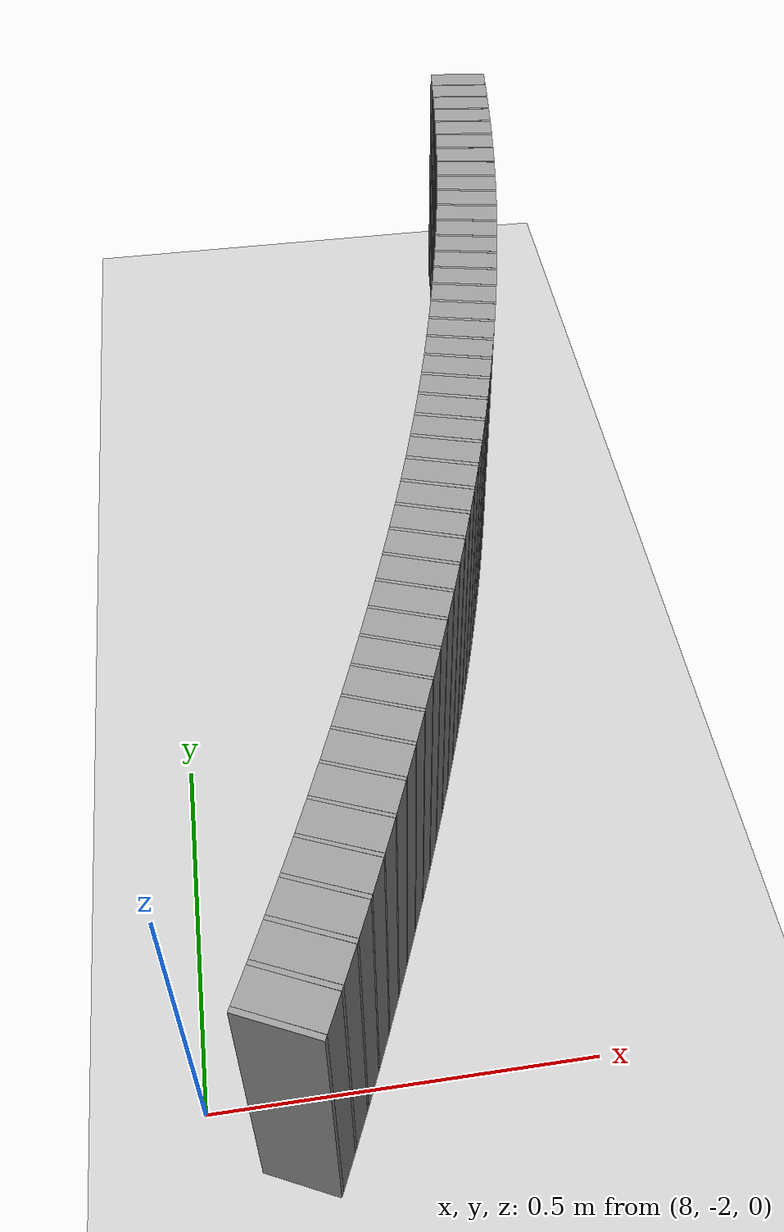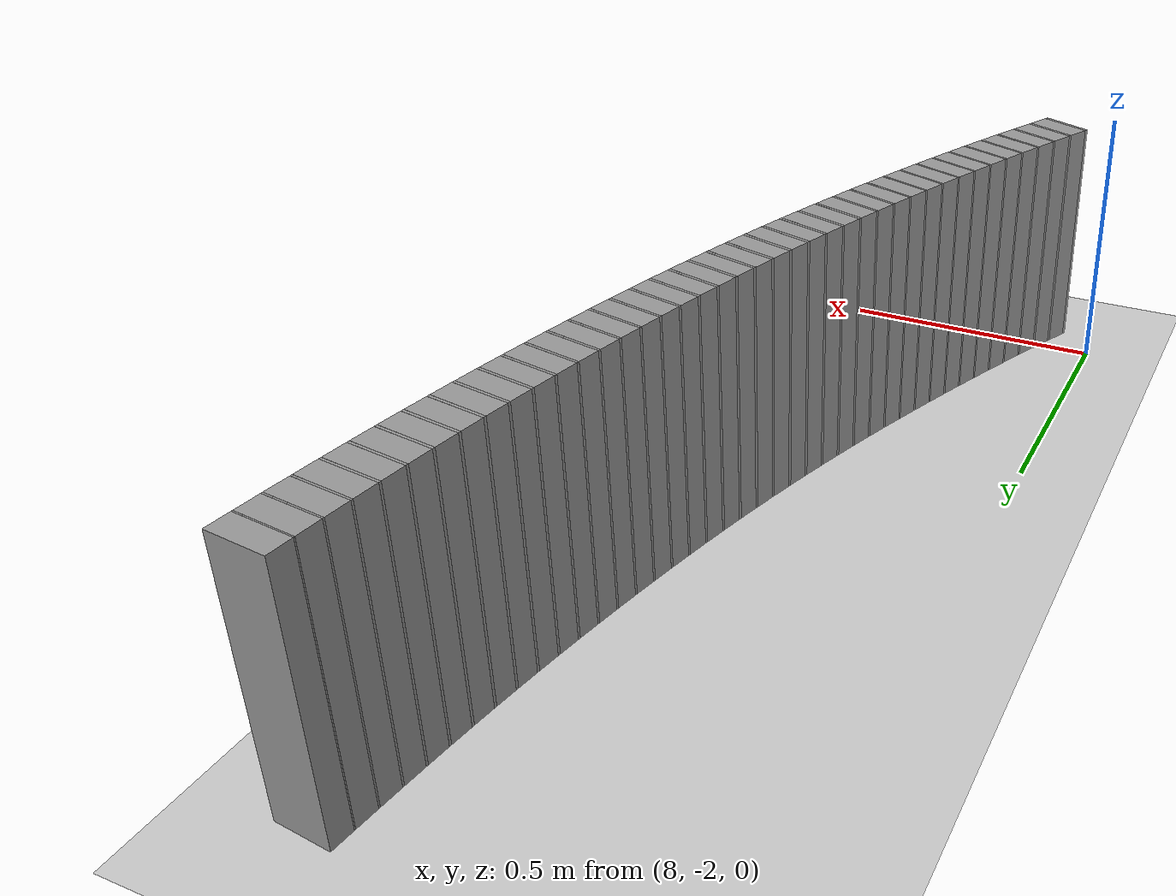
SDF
<sdf version="1.6">
 <world name="default">
  <include><uri>model://ground_plane</uri></include>
  <include><uri>model://sun</uri></include>
  <model name="wall_970_inward">
   <static>true</static>
   <link name="link">
    <collision name="collision">
     <geometry><box><size>0.006729009167083483 0.1 0.45</size></box></geometry>
    </collision>
    <visual name="visual">
     <geometry><box><size>0.006729009167083483 0.1 0.45</size></box></geometry>
     <material>
      <script><uri>file://media/materials/scripts/gazebo.material</uri><name>Gazebo/Gray</name></script>
     </material>
    </visual>
   </link>
   <pose>8.111903718564118 -2.095568244802338 0.225 0 0 1.1370368140136</pose>
  </model>
  <model name="wall_971_inward">
   <static>true</static>
   <link name="link">
    <collision name="collision">
     <geometry><box><size>0.04443290309049253 0.1 0.45</size></box></geometry>
    </collision>
    <visual name="visual">
     <geometry><box><size>0.04443290309049253 0.1 0.45</size></box></geometry>
     <material>
      <script><uri>file://media/materials/scripts/gazebo.material</uri><name>Gazebo/Gray</name></script>
     </material>
    </visual>
   </link>
   <pose>8.122541824965381 -2.0723042456131724 0.225 0 0 1.1426443510406616</pose>
  </model>
  <model name="wall_972_inward">
   <static>true</static>
   <link name="link">
    <collision name="collision">
     <geometry><box><size>0.006232259986639662 0.1 0.45</size></box></geometry>
    </collision>
    <visual name="visual">
     <geometry><box><size>0.006232259986639662 0.1 0.45</size></box></geometry>
     <material>
      <script><uri>file://media/materials/scripts/gazebo.material</uri><name>Gazebo/Gray</name></script>
     </material>
    </visual>
   </link>
   <pose>8.13304492672398 -2.04925163895962 0.225 0 0 1.1478379243774262</pose>
  </model>
  <model name="wall_973_inward">
   <static>true</static>
   <link name="link">
    <collision name="collision">
     <geometry><box><size>0.044300469198851486 0.1 0.45</size></box></geometry>
    </collision>
    <visual name="visual">
     <geometry><box><size>0.044300469198851486 0.1 0.45</size></box></geometry>
     <material>
      <script><uri>file://media/materials/scripts/gazebo.material</uri><name>Gazebo/Gray</name></script>
     </material>
    </visual>
   </link>
   <pose>8.143310733822467 -2.0261648348806087 0.225 0 0 1.1530314977140852</pose>
  </model>
  <model name="wall_974_inward">
   <static>true</static>
   <link name="link">
    <collision name="collision">
     <geometry><box><size>0.0057829448366355654 0.1 0.45</size></box></geometry>
    </collision>
    <visual name="visual">
     <geometry><box><size>0.0057829448366355654 0.1 0.45</size></box></geometry>
     <material>
      <script><uri>file://media/materials/scripts/gazebo.material</uri><name>Gazebo/Gray</name></script>
     </material>
    </visual>
   </link>
   <pose>8.153457868694913 -2.003271140184985 0.225 0 0 1.1578506370646373</pose>
  </model>
  <model name="wall_975_inward">
   <static>true</static>
   <link name="link">
    <collision name="collision">
     <geometry><box><size>0.04409095326926171 0.1 0.45</size></box></geometry>
    </collision>
    <visual name="visual">
     <geometry><box><size>0.04409095326926171 0.1 0.45</size></box></geometry>
     <material>
      <script><uri>file://media/materials/scripts/gazebo.material</uri><name>Gazebo/Gray</name></script>
     </material>
    </visual>
   </link>
   <pose>8.163367882165616 -1.9803879240498348 0.225 0 0 1.1626697764151654</pose>
  </model>
  <model name="wall_976_inward">
   <static>true</static>
   <link name="link">
    <collision name="collision">
     <geometry><box><size>0.005364360197349227 0.1 0.45</size></box></geometry>
    </collision>
    <visual name="visual">
     <geometry><box><size>0.005364360197349227 0.1 0.45</size></box></geometry>
     <material>
      <script><uri>file://media/materials/scripts/gazebo.material</uri><name>Gazebo/Gray</name></script>
     </material>
    </visual>
   </link>
   <pose>8.173171036981625 -1.957686514808566 0.225 0 0 1.1671400914685293</pose>
  </model>
  <model name="wall_977_inward">
   <static>true</static>
   <link name="link">
    <collision name="collision">
     <geometry><box><size>0.043809436206396206 0.1 0.45</size></box></geometry>
    </collision>
    <visual name="visual">
     <geometry><box><size>0.043809436206396206 0.1 0.45</size></box></geometry>
     <material>
      <script><uri>file://media/materials/scripts/gazebo.material</uri><name>Gazebo/Gray</name></script>
     </material>
    </visual>
   </link>
   <pose>8.182738224315756 -1.9350373798225762 0.225 0 0 1.1716104065218713</pose>
  </model>
  <model name="wall_978_inward">
   <static>true</static>
   <link name="link">
    <collision name="collision">
     <geometry><box><size>0.005003674212216144 0.1 0.45</size></box></geometry>
    </collision>
    <visual name="visual">
     <geometry><box><size>0.005003674212216144 0.1 0.45</size></box></geometry>
     <material>
      <script><uri>file://media/materials/scripts/gazebo.material</uri><name>Gazebo/Gray</name></script>
     </material>
    </visual>
   </link>
   <pose>8.192214660738951 -1.9125456894220116 0.225 0 0 1.1757801471151754</pose>
  </model>
  <model name="wall_979_inward">
   <static>true</static>
   <link name="link">
    <collision name="collision">
     <geometry><box><size>0.0434695512368718 0.1 0.45</size></box></geometry>
    </collision>
    <visual name="visual">
     <geometry><box><size>0.0434695512368718 0.1 0.45</size></box></geometry>
     <material>
      <script><uri>file://media/materials/scripts/gazebo.material</uri><name>Gazebo/Gray</name></script>
     </material>
    </visual>
   </link>
   <pose>8.201457748142772 -1.8901408286509667 0.225 0 0 1.1799498877082881</pose>
  </model>
  <model name="wall_980_inward">
   <static>true</static>
   <link name="link">
    <collision name="collision">
     <geometry><box><size>0.004708549815718161 0.1 0.45</size></box></geometry>
    </collision>
    <visual name="visual">
     <geometry><box><size>0.004708549815718161 0.1 0.45</size></box></geometry>
     <material>
      <script><uri>file://media/materials/scripts/gazebo.material</uri><name>Gazebo/Gray</name></script>
     </material>
    </visual>
   </link>
   <pose>8.210626433671015 -1.867864905030953 0.225 0 0 1.1838736892898922</pose>
  </model>
  <model name="wall_981_inward">
   <static>true</static>
   <link name="link">
    <collision name="collision">
     <geometry><box><size>0.04308777760432666 0.1 0.45</size></box></geometry>
    </collision>
    <visual name="visual">
     <geometry><box><size>0.04308777760432666 0.1 0.45</size></box></geometry>
     <material>
      <script><uri>file://media/materials/scripts/gazebo.material</uri><name>Gazebo/Gray</name></script>
     </material>
    </visual>
   </link>
   <pose>8.219565827741569 -1.8457016768937091 0.225 0 0 1.187797490871705</pose>
  </model>
  <model name="wall_982_inward">
   <static>true</static>
   <link name="link">
    <collision name="collision">
     <geometry><box><size>0.004475633977607856 0.1 0.45</size></box></geometry>
    </collision>
    <visual name="visual">
     <geometry><box><size>0.004475633977607856 0.1 0.45</size></box></geometry>
     <material>
      <script><uri>file://media/materials/scripts/gazebo.material</uri><name>Gazebo/Gray</name></script>
     </material>
    </visual>
   </link>
   <pose>8.228445391951073 -1.8236398954804587 0.225 0 0 1.1915271945000838</pose>
  </model>
  <model name="wall_983_inward">
   <static>true</static>
   <link name="link">
    <collision name="collision">
     <geometry><box><size>0.04267885594220961 0.1 0.45</size></box></geometry>
    </collision>
    <visual name="visual">
     <geometry><box><size>0.04267885594220961 0.1 0.45</size></box></geometry>
     <material>
      <script><uri>file://media/materials/scripts/gazebo.material</uri><name>Gazebo/Gray</name></script>
     </material>
    </visual>
   </link>
   <pose>8.237100681261772 -1.8017088265926666 0.225 0 0 1.1952568981286413</pose>
  </model>
  <model name="wall_984_inward">
   <static>true</static>
   <link name="link">
    <collision name="collision">
     <geometry><box><size>0.004313991511766985 0.1 0.45</size></box></geometry>
    </collision>
    <visual name="visual">
     <geometry><box><size>0.004313991511766985 0.1 0.45</size></box></geometry>
     <material>
      <script><uri>file://media/materials/scripts/gazebo.material</uri><name>Gazebo/Gray</name></script>
     </material>
    </visual>
   </link>
   <pose>8.245711349312355 -1.7798470396391584 0.225 0 0 1.1988518987985286</pose>
  </model>
  <model name="wall_985_inward">
   <static>true</static>
   <link name="link">
    <collision name="collision">
     <geometry><box><size>0.042262036649437715 0.1 0.45</size></box></geometry>
    </collision>
    <visual name="visual">
     <geometry><box><size>0.042262036649437715 0.1 0.45</size></box></geometry>
     <material>
      <script><uri>file://media/materials/scripts/gazebo.material</uri><name>Gazebo/Gray</name></script>
     </material>
    </visual>
   </link>
   <pose>8.25410403503253 -1.7581239220647786 0.225 0 0 1.2024468994688549</pose>
  </model>
  <model name="wall_986_inward">
   <static>true</static>
   <link name="link">
    <collision name="collision">
     <geometry><box><size>0.004235615633267237 0.1 0.45</size></box></geometry>
    </collision>
    <visual name="visual">
     <geometry><box><size>0.004235615633267237 0.1 0.45</size></box></geometry>
     <material>
      <script><uri>file://media/materials/scripts/gazebo.material</uri><name>Gazebo/Gray</name></script>
     </material>
    </visual>
   </link>
   <pose>8.262468402369088 -1.7364318793194253 0.225 0 0 1.2059765864926033</pose>
  </model>
  <model name="wall_987_inward">
   <static>true</static>
   <link name="link">
    <collision name="collision">
     <geometry><box><size>0.041850018666857135 0.1 0.45</size></box></geometry>
    </collision>
    <visual name="visual">
     <geometry><box><size>0.041850018666857135 0.1 0.45</size></box></geometry>
     <material>
      <script><uri>file://media/materials/scripts/gazebo.material</uri><name>Gazebo/Gray</name></script>
     </material>
    </visual>
   </link>
   <pose>8.270620595185974 -1.7148793244272698 0.225 0 0 1.209506273516051</pose>
  </model>
  <model name="wall_988_inward">
   <static>true</static>
   <link name="link">
    <collision name="collision">
     <geometry><box><size>0.0042439353547835375 0.1 0.45</size></box></geometry>
    </collision>
    <visual name="visual">
     <geometry><box><size>0.0042439353547835375 0.1 0.45</size></box></geometry>
     <material>
      <script><uri>file://media/materials/scripts/gazebo.material</uri><name>Gazebo/Gray</name></script>
     </material>
    </visual>
   </link>
   <pose>8.278760245716548 -1.693317583235764 0.225 0 0 1.2130428936843785</pose>
  </model>
  <model name="wall_989_inward">
   <static>true</static>
   <link name="link">
    <collision name="collision">
     <geometry><box><size>0.041454378430403595 0.1 0.45</size></box></geometry>
    </collision>
    <visual name="visual">
     <geometry><box><size>0.041454378430403595 0.1 0.45</size></box></geometry>
     <material>
      <script><uri>file://media/materials/scripts/gazebo.material</uri><name>Gazebo/Gray</name></script>
     </material>
    </visual>
   </link>
   <pose>8.286692644813577 -1.6718895533414844 0.225 0 0 1.2165795138523217</pose>
  </model>
  <model name="wall_990_inward">
   <static>true</static>
   <link name="link">
    <collision name="collision">
     <geometry><box><size>0.004336663187670555 0.1 0.45</size></box></geometry>
    </collision>
    <visual name="visual">
     <geometry><box><size>0.004336663187670555 0.1 0.45</size></box></geometry>
     <material>
      <script><uri>file://media/materials/scripts/gazebo.material</uri><name>Gazebo/Gray</name></script>
     </material>
    </visual>
   </link>
   <pose>8.294626736892877 -1.6504127177034407 0.225 0 0 1.220193407708083</pose>
  </model>
  <model name="wall_991_inward">
   <static>true</static>
   <link name="link">
    <collision name="collision">
     <geometry><box><size>0.04108081499847302 0.1 0.45</size></box></geometry>
    </collision>
    <visual name="visual">
     <geometry><box><size>0.04108081499847302 0.1 0.45</size></box></geometry>
     <material>
      <script><uri>file://media/materials/scripts/gazebo.material</uri><name>Gazebo/Gray</name></script>
     </material>
    </visual>
   </link>
   <pose>8.302356612778091 -1.6290600769226113 0.225 0 0 1.22380730156452</pose>
  </model>
  <model name="wall_992_inward">
   <static>true</static>
   <link name="link">
    <collision name="collision">
     <geometry><box><size>0.004484502755509092 0.1 0.45</size></box></geometry>
    </collision>
    <visual name="visual">
     <geometry><box><size>0.004484502755509092 0.1 0.45</size></box></geometry>
     <material>
      <script><uri>file://media/materials/scripts/gazebo.material</uri><name>Gazebo/Gray</name></script>
     </material>
    </visual>
   </link>
   <pose>8.310096376740125 -1.607632408918481 0.225 0 0 1.2275443958929046</pose>
  </model>
  <model name="wall_993_inward">
   <static>true</static>
   <link name="link">
    <collision name="collision">
     <geometry><box><size>0.040733336396260235 0.1 0.45</size></box></geometry>
    </collision>
    <visual name="visual">
     <geometry><box><size>0.040733336396260235 0.1 0.45</size></box></geometry>
     <material>
      <script><uri>file://media/materials/scripts/gazebo.material</uri><name>Gazebo/Gray</name></script>
     </material>
    </visual>
   </link>
   <pose>8.317633713542742 -1.5863168943684811 0.225 0 0 1.2312814902209543</pose>
  </model>
  <model name="wall_994_inward">
   <static>true</static>
   <link name="link">
    <collision name="collision">
     <geometry><box><size>0.00471061105718906 0.1 0.45</size></box></geometry>
    </collision>
    <visual name="visual">
     <geometry><box><size>0.00471061105718906 0.1 0.45</size></box></geometry>
     <material>
      <script><uri>file://media/materials/scripts/gazebo.material</uri><name>Gazebo/Gray</name></script>
     </material>
    </visual>
   </link>
   <pose>8.325192080757077 -1.5648889118247837 0.225 0 0 1.235207009517158</pose>
  </model>
  <model name="wall_995_inward">
   <static>true</static>
   <link name="link">
    <collision name="collision">
     <geometry><box><size>0.04041294311350204 0.1 0.45</size></box></geometry>
    </collision>
    <visual name="visual">
     <geometry><box><size>0.04041294311350204 0.1 0.45</size></box></geometry>
     <material>
      <script><uri>file://media/materials/scripts/gazebo.material</uri><name>Gazebo/Gray</name></script>
     </material>
    </visual>
   </link>
   <pose>8.332547305945283 -1.5435597366345513 0.225 0 0 1.2391325288132604</pose>
  </model>
  <model name="wall_996_inward">
   <static>true</static>
   <link name="link">
    <collision name="collision">
     <geometry><box><size>0.00495613349449834 0.1 0.45</size></box></geometry>
    </collision>
    <visual name="visual">
     <geometry><box><size>0.00495613349449834 0.1 0.45</size></box></geometry>
     <material>
      <script><uri>file://media/materials/scripts/gazebo.material</uri><name>Gazebo/Gray</name></script>
     </material>
    </visual>
   </link>
   <pose>8.33992408443505 -1.5221081501421958 0.225 0 0 1.243262651800705</pose>
  </model>
  <model name="wall_997_inward">
   <static>true</static>
   <link name="link">
    <collision name="collision">
     <geometry><box><size>0.040116886311218736 0.1 0.45</size></box></geometry>
    </collision>
    <visual name="visual">
     <geometry><box><size>0.040116886311218736 0.1 0.45</size></box></geometry>
     <material>
      <script><uri>file://media/materials/scripts/gazebo.material</uri><name>Gazebo/Gray</name></script>
     </material>
    </visual>
   </link>
   <pose>8.347095783370083 -1.5007432217523184 0.225 0 0 1.2473927747878768</pose>
  </model>
  <model name="wall_998_inward">
   <static>true</static>
   <link name="link">
    <collision name="collision">
     <geometry><box><size>0.005220553768588516 0.1 0.45</size></box></geometry>
    </collision>
    <visual name="visual">
     <geometry><box><size>0.005220553768588516 0.1 0.45</size></box></geometry>
     <material>
      <script><uri>file://media/materials/scripts/gazebo.material</uri><name>Gazebo/Gray</name></script>
     </material>
    </visual>
   </link>
   <pose>8.354289025630827 -1.479246079080212 0.225 0 0 1.2517432499848686</pose>
  </model>
  <model name="wall_999_inward">
   <static>true</static>
   <link name="link">
    <collision name="collision">
     <geometry><box><size>0.0398430717093224 0.1 0.45</size></box></geometry>
    </collision>
    <visual name="visual">
     <geometry><box><size>0.0398430717093224 0.1 0.45</size></box></geometry>
     <material>
      <script><uri>file://media/materials/scripts/gazebo.material</uri><name>Gazebo/Gray</name></script>
     </material>
    </visual>
   </link>
   <pose>8.361274171377321 -1.457824376533345 0.225 0 0 1.256093725182095</pose>
  </model>
  <model name="wall_1000_inward">
   <static>true</static>
   <link name="link">
    <collision name="collision">
     <geometry><box><size>0.005467589136132899 0.1 0.45</size></box></geometry>
    </collision>
    <visual name="visual">
     <geometry><box><size>0.005467589136132899 0.1 0.45</size></box></geometry>
     <material>
      <script><uri>file://media/materials/scripts/gazebo.material</uri><name>Gazebo/Gray</name></script>
     </material>
    </visual>
   </link>
   <pose>8.36827490634916 -1.436277855334139 0.225 0 0 1.2606500652271917</pose>
  </model>
  <model name="wall_1001_inward">
   <static>true</static>
   <link name="link">
    <collision name="collision">
     <geometry><box><size>0.039590360676901484 0.1 0.45</size></box></geometry>
    </collision>
    <visual name="visual">
     <geometry><box><size>0.039590360676901484 0.1 0.45</size></box></geometry>
     <material>
      <script><uri>file://media/materials/scripts/gazebo.material</uri><name>Gazebo/Gray</name></script>
     </material>
    </visual>
   </link>
   <pose>8.375064749941838 -1.4147964305474203 0.225 0 0 1.2652064052725127</pose>
  </model>
  <model name="wall_1002_inward">
   <static>true</static>
   <link name="link">
    <collision name="collision">
     <geometry><box><size>0.005682416762676085 0.1 0.45</size></box></geometry>
    </collision>
    <visual name="visual">
     <geometry><box><size>0.005682416762676085 0.1 0.45</size></box></geometry>
     <material>
      <script><uri>file://media/materials/scripts/gazebo.material</uri><name>Gazebo/Gray</name></script>
     </material>
    </visual>
   </link>
   <pose>8.381862198822994 -1.3932047765620053 0.225 0 0 1.2699417702721914</pose>
  </model>
  <model name="wall_1003_inward">
   <static>true</static>
   <link name="link">
    <collision name="collision">
     <geometry><box><size>0.03935837972286453 0.1 0.45</size></box></geometry>
    </collision>
    <visual name="visual">
     <geometry><box><size>0.03935837972286453 0.1 0.45</size></box></geometry>
     <material>
      <script><uri>file://media/materials/scripts/gazebo.material</uri><name>Gazebo/Gray</name></script>
     </material>
    </visual>
   </link>
   <pose>8.388446747017667 -1.3716685092828498 0.225 0 0 1.274677135271706</pose>
  </model>
  <model name="wall_1004_inward">
   <static>true</static>
   <link name="link">
    <collision name="collision">
     <geometry><box><size>0.005828334285679522 0.1 0.45</size></box></geometry>
    </collision>
    <visual name="visual">
     <geometry><box><size>0.005828334285679522 0.1 0.45</size></box></geometry>
     <material>
      <script><uri>file://media/materials/scripts/gazebo.material</uri><name>Gazebo/Gray</name></script>
     </material>
    </visual>
   </link>
   <pose>8.39502617816163 -1.350054404774654 0.225 0 0 1.2795340996057947</pose>
  </model>
  <model name="wall_1005_inward">
   <static>true</static>
   <link name="link">
    <collision name="collision">
     <geometry><box><size>0.03914938210505432 0.1 0.45</size></box></geometry>
    </collision>
    <visual name="visual">
     <geometry><box><size>0.03914938210505432 0.1 0.45</size></box></geometry>
     <material>
      <script><uri>file://media/materials/scripts/gazebo.material</uri><name>Gazebo/Gray</name></script>
     </material>
    </visual>
   </link>
   <pose>8.401392977602505 -1.3284856481544478 0.225 0 0 1.284391063939869</pose>
  </model>
  <model name="wall_1006_inward">
   <static>true</static>
   <link name="link">
    <collision name="collision">
     <geometry><box><size>0.0058926712340377305 0.1 0.45</size></box></geometry>
    </collision>
    <visual name="visual">
     <geometry><box><size>0.0058926712340377305 0.1 0.45</size></box></geometry>
     <material>
      <script><uri>file://media/materials/scripts/gazebo.material</uri><name>Gazebo/Gray</name></script>
     </material>
    </visual>
   </link>
   <pose>8.407741408295173 -1.3068779486178368 0.225 0 0 1.289301643037099</pose>
  </model>
  <model name="wall_1007_inward">
   <static>true</static>
   <link name="link">
    <collision name="collision">
     <geometry><box><size>0.038968449787205095 0.1 0.45</size></box></geometry>
    </collision>
    <visual name="visual">
     <geometry><box><size>0.038968449787205095 0.1 0.45</size></box></geometry>
     <material>
      <script><uri>file://media/materials/scripts/gazebo.material</uri><name>Gazebo/Gray</name></script>
     </material>
    </visual>
   </link>
   <pose>8.413880456449984 -1.2853038727795867 0.225 0 0 1.2942122221341246</pose>
  </model>
  <model name="wall_1008_inward">
   <static>true</static>
   <link name="link">
    <collision name="collision">
     <geometry><box><size>0.005879918014086558 0.1 0.45</size></box></geometry>
    </collision>
    <visual name="visual">
     <geometry><box><size>0.005879918014086558 0.1 0.45</size></box></geometry>
     <material>
      <script><uri>file://media/materials/scripts/gazebo.material</uri><name>Gazebo/Gray</name></script>
     </material>
    </visual>
   </link>
   <pose>8.419989987025797 -1.2637280463893243 0.225 0 0 1.299112173419968</pose>
  </model>
  <model name="wall_1009_inward">
   <static>true</static>
   <link name="link">
    <collision name="collision">
     <geometry><box><size>0.03882099422687169 0.1 0.45</size></box></geometry>
    </collision>
    <visual name="visual">
     <geometry><box><size>0.03882099422687169 0.1 0.45</size></box></geometry>
     <material>
      <script><uri>file://media/materials/scripts/gazebo.material</uri><name>Gazebo/Gray</name></script>
     </material>
    </visual>
   </link>
   <pose>8.425896141668524 -1.2421720992748182 0.225 0 0 1.3040121247060517</pose>
  </model>
  <model name="wall_1010_inward">
   <static>true</static>
   <link name="link">
    <collision name="collision">
     <geometry><box><size>0.005774599423432075 0.1 0.45</size></box></geometry>
    </collision>
    <visual name="visual">
     <geometry><box><size>0.005774599423432075 0.1 0.45</size></box></geometry>
     <material>
      <script><uri>file://media/materials/scripts/gazebo.material</uri><name>Gazebo/Gray</name></script>
     </material>
    </visual>
   </link>
   <pose>8.431761115569326 -1.2206594860773197 0.225 0 0 1.3088243094652103</pose>
  </model>
  <model name="wall_1011_inward">
   <static>true</static>
   <link name="link">
    <collision name="collision">
     <geometry><box><size>0.038713179592260095 0.1 0.45</size></box></geometry>
    </collision>
    <visual name="visual">
     <geometry><box><size>0.038713179592260095 0.1 0.45</size></box></geometry>
     <material>
      <script><uri>file://media/materials/scripts/gazebo.material</uri><name>Gazebo/Gray</name></script>
     </material>
    </visual>
   </link>
   <pose>8.437431939737783 -1.1991506255896371 0.225 0 0 1.3136364942238448</pose>
  </model>
  <model name="wall_1012_inward">
   <static>true</static>
   <link name="link">
    <collision name="collision">
     <geometry><box><size>0.005609451702048823 0.1 0.45</size></box></geometry>
    </collision>
    <visual name="visual">
     <geometry><box><size>0.005609451702048823 0.1 0.45</size></box></geometry>
     <material>
      <script><uri>file://media/materials/scripts/gazebo.material</uri><name>Gazebo/Gray</name></script>
     </material>
    </visual>
   </link>
   <pose>8.44305564625553 -1.1777147526216378 0.225 0 0 1.3183110543331322</pose>
  </model>
  <model name="wall_1013_inward">
   <static>true</static>
   <link name="link">
    <collision name="collision">
     <geometry><box><size>0.03865069569711112 0.1 0.45</size></box></geometry>
    </collision>
    <visual name="visual">
     <geometry><box><size>0.03865069569711112 0.1 0.45</size></box></geometry>
     <material>
      <script><uri>file://media/materials/scripts/gazebo.material</uri><name>Gazebo/Gray</name></script>
     </material>
    </visual>
   </link>
   <pose>8.448496460875024 -1.1562639597732367 0.225 0 0 1.3229856144426249</pose>
  </model>
  <model name="wall_1014_inward">
   <static>true</static>
   <link name="link">
    <collision name="collision">
     <geometry><box><size>0.005384621818922009 0.1 0.45</size></box></geometry>
    </collision>
    <visual name="visual">
     <geometry><box><size>0.005384621818922009 0.1 0.45</size></box></geometry>
     <material>
      <script><uri>file://media/materials/scripts/gazebo.material</uri><name>Gazebo/Gray</name></script>
     </material>
    </visual>
   </link>
   <pose>8.453885280839483 -1.1349159652782528 0.225 0 0 1.327472814350069</pose>
  </model>
  <model name="wall_1015_inward">
   <static>true</static>
   <link name="link">
    <collision name="collision">
     <geometry><box><size>0.03863621253700878 0.1 0.45</size></box></geometry>
    </collision>
    <visual name="visual">
     <geometry><box><size>0.03863621253700878 0.1 0.45</size></box></geometry>
     <material>
      <script><uri>file://media/materials/scripts/gazebo.material</uri><name>Gazebo/Gray</name></script>
     </material>
    </visual>
   </link>
   <pose>8.4591040637109 -1.1135332217109646 0.225 0 0 1.3319600142573336</pose>
  </model>
  <model name="wall_1016_inward">
   <static>true</static>
   <link name="link">
    <collision name="collision">
     <geometry><box><size>0.005137129624358179 0.1 0.45</size></box></geometry>
    </collision>
    <visual name="visual">
     <geometry><box><size>0.005137129624358179 0.1 0.45</size></box></geometry>
     <material>
      <script><uri>file://media/materials/scripts/gazebo.material</uri><name>Gazebo/Gray</name></script>
     </material>
    </visual>
   </link>
   <pose>8.464271150835275 -1.092265248787256 0.225 0 0 1.3362409686865822</pose>
  </model>
  <model name="wall_1017_inward">
   <static>true</static>
   <link name="link">
    <collision name="collision">
     <geometry><box><size>0.03867172683501582 0.1 0.45</size></box></geometry>
    </collision>
    <visual name="visual">
     <geometry><box><size>0.03867172683501582 0.1 0.45</size></box></geometry>
     <material>
      <script><uri>file://media/materials/scripts/gazebo.material</uri><name>Gazebo/Gray</name></script>
     </material>
    </visual>
   </link>
   <pose>8.469281420576838 -1.070941546880906 0.225 0 0 1.340521923116334</pose>
  </model>
  <model name="wall_1018_inward">
   <static>true</static>
   <link name="link">
    <collision name="collision">
     <geometry><box><size>0.004906080185503133 0.1 0.45</size></box></geometry>
    </collision>
    <visual name="visual">
     <geometry><box><size>0.004906080185503133 0.1 0.45</size></box></geometry>
     <material>
      <script><uri>file://media/materials/scripts/gazebo.material</uri><name>Gazebo/Gray</name></script>
     </material>
    </visual>
   </link>
   <pose>8.474244853199302 -1.0497255185071133 0.225 0 0 1.3446103346604352</pose>
  </model>
  <model name="wall_1019_inward">
   <static>true</static>
   <link name="link">
    <collision name="collision">
     <geometry><box><size>0.03875336573390909 0.1 0.45</size></box></geometry>
    </collision>
    <visual name="visual">
     <geometry><box><size>0.03875336573390909 0.1 0.45</size></box></geometry>
     <material>
      <script><uri>file://media/materials/scripts/gazebo.material</uri><name>Gazebo/Gray</name></script>
     </material>
    </visual>
   </link>
   <pose>8.479063199013208 -1.0284342162074092 0.225 0 0 1.3486987462048776</pose>
  </model>
  <model name="wall_1020_inward">
   <static>true</static>
   <link name="link">
    <collision name="collision">
     <geometry><box><size>0.004702836921988961 0.1 0.45</size></box></geometry>
    </collision>
    <visual name="visual">
     <geometry><box><size>0.004702836921988961 0.1 0.45</size></box></geometry>
     <material>
      <script><uri>file://media/materials/scripts/gazebo.material</uri><name>Gazebo/Gray</name></script>
     </material>
    </visual>
   </link>
   <pose>8.483840388938265 -1.0072377980206846 0.225 0 0 1.3526177870055038</pose>
  </model>
  <model name="wall_1021_inward">
   <static>true</static>
   <link name="link">
    <collision name="collision">
     <geometry><box><size>0.03887501813459759 0.1 0.45</size></box></geometry>
    </collision>
    <visual name="visual">
     <geometry><box><size>0.03887501813459759 0.1 0.45</size></box></geometry>
     <material>
      <script><uri>file://media/materials/scripts/gazebo.material</uri><name>Gazebo/Gray</name></script>
     </material>
    </visual>
   </link>
   <pose>8.488482236801651 -0.9859490707393599 0.225 0 0 1.3565368278055376</pose>
  </model>
  <model name="wall_1022_inward">
   <static>true</static>
   <link name="link">
    <collision name="collision">
     <geometry><box><size>0.004570447707255762 0.1 0.45</size></box></geometry>
    </collision>
    <visual name="visual">
     <geometry><box><size>0.004570447707255762 0.1 0.45</size></box></geometry>
     <material>
      <script><uri>file://media/materials/scripts/gazebo.material</uri><name>Gazebo/Gray</name></script>
     </material>
    </visual>
   </link>
   <pose>8.493092501129945 -0.9647212130042726 0.225 0 0 1.3603455434363176</pose>
  </model>
  <model name="wall_1023_inward">
   <static>true</static>
   <link name="link">
    <collision name="collision">
     <geometry><box><size>0.03902867274158103 0.1 0.45</size></box></geometry>
    </collision>
    <visual name="visual">
     <geometry><box><size>0.03902867274158103 0.1 0.45</size></box></geometry>
     <material>
      <script><uri>file://media/materials/scripts/gazebo.material</uri><name>Gazebo/Gray</name></script>
     </material>
    </visual>
   </link>
   <pose>8.497573731684506 -0.9433872318523169 0.225 0 0 1.3641542590677598</pose>
  </model>
  <model name="wall_1024_inward">
   <static>true</static>
   <link name="link">
    <collision name="collision">
     <geometry><box><size>0.004513936456394103 0.1 0.45</size></box></geometry>
    </collision>
    <visual name="visual">
     <geometry><box><size>0.004513936456394103 0.1 0.45</size></box></geometry>
     <material>
      <script><uri>file://media/materials/scripts/gazebo.material</uri><name>Gazebo/Gray</name></script>
     </material>
    </visual>
   </link>
   <pose>8.502032337225323 -0.9220773769168457 0.225 0 0 1.3679158816525612</pose>
  </model>
  <model name="wall_1025_inward">
   <static>true</static>
   <link name="link">
    <collision name="collision">
     <geometry><box><size>0.0392007953330033 0.1 0.45</size></box></geometry>
    </collision>
    <visual name="visual">
     <geometry><box><size>0.0392007953330033 0.1 0.45</size></box></geometry>
     <material>
      <script><uri>file://media/materials/scripts/gazebo.material</uri><name>Gazebo/Gray</name></script>
     </material>
    </visual>
   </link>
   <pose>8.506364166436937 -0.9006535800174799 0.225 0 0 1.3716775042371456</pose>
  </model>
  <model name="wall_1026_inward">
   <static>true</static>
   <link name="link">
    <collision name="collision">
     <geometry><box><size>0.004515413311452266 0.1 0.45</size></box></geometry>
    </collision>
    <visual name="visual">
     <geometry><box><size>0.004515413311452266 0.1 0.45</size></box></geometry>
     <material>
      <script><uri>file://media/materials/scripts/gazebo.material</uri><name>Gazebo/Gray</name></script>
     </material>
    </visual>
   </link>
   <pose>8.510679492076003 -0.8792256995197558 0.225 0 0 1.3754403575430525</pose>
  </model>
  <model name="wall_1027_inward">
   <static>true</static>
   <link name="link">
    <collision name="collision">
     <geometry><box><size>0.0393809867351388 0.1 0.45</size></box></geometry>
    </collision>
    <visual name="visual">
     <geometry><box><size>0.0393809867351388 0.1 0.45</size></box></geometry>
     <material>
      <script><uri>file://media/materials/scripts/gazebo.material</uri><name>Gazebo/Gray</name></script>
     </material>
    </visual>
   </link>
   <pose>8.514867273298893 -0.8576807385486558 0.225 0 0 1.3792032108490482</pose>
  </model>
  <model name="wall_1028_inward">
   <static>true</static>
   <link name="link">
    <collision name="collision">
     <geometry><box><size>0.0045907410317733485 0.1 0.45</size></box></geometry>
    </collision>
    <visual name="visual">
     <geometry><box><size>0.0045907410317733485 0.1 0.45</size></box></geometry>
     <material>
      <script><uri>file://media/materials/scripts/gazebo.material</uri><name>Gazebo/Gray</name></script>
     </material>
    </visual>
   </link>
   <pose>8.51904526595278 -0.8360955138194583 0.225 0 0 1.3830288377074211</pose>
  </model>
  <model name="wall_1029_inward">
   <static>true</static>
   <link name="link">
    <collision name="collision">
     <geometry><box><size>0.039555382343201086 0.1 0.45</size></box></geometry>
    </collision>
    <visual name="visual">
     <geometry><box><size>0.039555382343201086 0.1 0.45</size></box></geometry>
     <material>
      <script><uri>file://media/materials/scripts/gazebo.material</uri><name>Gazebo/Gray</name></script>
     </material>
    </visual>
   </link>
   <pose>8.523091199073653 -0.8143964398061334 0.225 0 0 1.3868544645652103</pose>
  </model>
  <model name="wall_1030_inward">
   <static>true</static>
   <link name="link">
    <collision name="collision">
     <geometry><box><size>0.004702174738328425 0.1 0.45</size></box></geometry>
    </collision>
    <visual name="visual">
     <geometry><box><size>0.004702174738328425 0.1 0.45</size></box></geometry>
     <material>
      <script><uri>file://media/materials/scripts/gazebo.material</uri><name>Gazebo/Gray</name></script>
     </material>
    </visual>
   </link>
   <pose>8.527129632586377 -0.7926392988979694 0.225 0 0 1.3907729535414795</pose>
  </model>
  <model name="wall_1031_inward">
   <static>true</static>
   <link name="link">
    <collision name="collision">
     <geometry><box><size>0.039714274988125894 0.1 0.45</size></box></geometry>
    </collision>
    <visual name="visual">
     <geometry><box><size>0.039714274988125894 0.1 0.45</size></box></geometry>
     <material>
      <script><uri>file://media/materials/scripts/gazebo.material</uri><name>Gazebo/Gray</name></script>
     </material>
    </visual>
   </link>
   <pose>8.531029492673866 -0.7707761878193997 0.225 0 0 1.3946914425179613</pose>
  </model>
  <model name="wall_1032_inward">
   <static>true</static>
   <link name="link">
    <collision name="collision">
     <geometry><box><size>0.004815862170587328 0.1 0.45</size></box></geometry>
    </collision>
    <visual name="visual">
     <geometry><box><size>0.004815862170587328 0.1 0.45</size></box></geometry>
     <material>
      <script><uri>file://media/materials/scripts/gazebo.material</uri><name>Gazebo/Gray</name></script>
     </material>
    </visual>
   </link>
   <pose>8.534920727028545 -0.7488538064720469 0.225 0 0 1.3987046717661393</pose>
  </model>
  <model name="wall_1033_inward">
   <static>true</static>
   <link name="link">
    <collision name="collision">
     <geometry><box><size>0.039847389683748596 0.1 0.45</size></box></geometry>
    </collision>
    <visual name="visual">
     <geometry><box><size>0.039847389683748596 0.1 0.45</size></box></geometry>
     <material>
      <script><uri>file://media/materials/scripts/gazebo.material</uri><name>Gazebo/Gray</name></script>
     </material>
    </visual>
   </link>
   <pose>8.538666067851459 -0.7268385125610334 0.225 0 0 1.4027179010146469</pose>
  </model>
  <model name="wall_1034_inward">
   <static>true</static>
   <link name="link">
    <collision name="collision">
     <geometry><box><size>0.004921797327488602 0.1 0.45</size></box></geometry>
    </collision>
    <visual name="visual">
     <geometry><box><size>0.004921797327488602 0.1 0.45</size></box></geometry>
     <material>
      <script><uri>file://media/materials/scripts/gazebo.material</uri><name>Gazebo/Gray</name></script>
     </material>
    </visual>
   </link>
   <pose>8.54240079079429 -0.7047676936784285 0.225 0 0 1.4068194102869347</pose>
  </model>
  <model name="wall_1035_inward">
   <static>true</static>
   <link name="link">
    <collision name="collision">
     <geometry><box><size>0.039950802327903955 0.1 0.45</size></box></geometry>
    </collision>
    <visual name="visual">
     <geometry><box><size>0.039950802327903955 0.1 0.45</size></box></geometry>
     <material>
      <script><uri>file://media/materials/scripts/gazebo.material</uri><name>Gazebo/Gray</name></script>
     </material>
    </visual>
   </link>
   <pose>8.545982503478113 -0.682619148415478 0.225 0 0 1.4109209195594665</pose>
  </model>
  <model name="wall_1036_inward">
   <static>true</static>
   <link name="link">
    <collision name="collision">
     <geometry><box><size>0.0049596384378683 0.1 0.45</size></box></geometry>
    </collision>
    <visual name="visual">
     <geometry><box><size>0.0049596384378683 0.1 0.45</size></box></geometry>
     <material>
      <script><uri>file://media/materials/scripts/gazebo.material</uri><name>Gazebo/Gray</name></script>
     </material>
    </visual>
   </link>
   <pose>8.549547145030225 -0.6604486859285521 0.225 0 0 1.4150539633579087</pose>
  </model>
  <model name="wall_1037_inward">
   <static>true</static>
   <link name="link">
    <collision name="collision">
     <geometry><box><size>0.04001988478322116 0.1 0.45</size></box></geometry>
    </collision>
    <visual name="visual">
     <geometry><box><size>0.04001988478322116 0.1 0.45</size></box></geometry>
     <material>
      <script><uri>file://media/materials/scripts/gazebo.material</uri><name>Gazebo/Gray</name></script>
     </material>
    </visual>
   </link>
   <pose>8.552953883850055 -0.6382184664000661 0.225 0 0 1.419187007156182</pose>
  </model>
  <model name="wall_1038_inward">
   <static>true</static>
   <link name="link">
    <collision name="collision">
     <geometry><box><size>0.004911748381807525 0.1 0.45</size></box></geometry>
    </collision>
    <visual name="visual">
     <geometry><box><size>0.004911748381807525 0.1 0.45</size></box></geometry>
     <material>
      <script><uri>file://media/materials/scripts/gazebo.material</uri><name>Gazebo/Gray</name></script>
     </material>
    </visual>
   </link>
   <pose>8.556336937865373 -0.6160088505335456 0.225 0 0 1.4232801422366905</pose>
  </model>
  <model name="wall_1039_inward">
   <static>true</static>
   <link name="link">
    <collision name="collision">
     <geometry><box><size>0.040057173997806936 0.1 0.45</size></box></geometry>
    </collision>
    <visual name="visual">
     <geometry><box><size>0.040057173997806936 0.1 0.45</size></box></geometry>
     <material>
      <script><uri>file://media/materials/scripts/gazebo.material</uri><name>Gazebo/Gray</name></script>
     </material>
    </visual>
   </link>
   <pose>8.559560629519112 -0.5937567049506987 0.225 0 0 1.4273732773176357</pose>
  </model>
  <model name="wall_1040_inward">
   <static>true</static>
   <link name="link">
    <collision name="collision">
     <geometry><box><size>0.004764844079702401 0.1 0.45</size></box></geometry>
    </collision>
    <visual name="visual">
     <geometry><box><size>0.004764844079702401 0.1 0.45</size></box></geometry>
     <material>
      <script><uri>file://media/materials/scripts/gazebo.material</uri><name>Gazebo/Gray</name></script>
     </material>
    </visual>
   </link>
   <pose>8.562754511028817 -0.5715744666796879 0.225 0 0 1.4313439911517487</pose>
  </model>
  <model name="wall_1041_inward">
   <static>true</static>
   <link name="link">
    <collision name="collision">
     <geometry><box><size>0.040064967212706575 0.1 0.45</size></box></geometry>
    </collision>
    <visual name="visual">
     <geometry><box><size>0.040064967212706575 0.1 0.45</size></box></geometry>
     <material>
      <script><uri>file://media/materials/scripts/gazebo.material</uri><name>Gazebo/Gray</name></script>
     </material>
    </visual>
   </link>
   <pose>8.56579140775115 -0.5493662587160867 0.225 0 0 1.4353147049852788</pose>
  </model>
  <model name="wall_1042_inward">
   <static>true</static>
   <link name="link">
    <collision name="collision">
     <geometry><box><size>0.004472057387475948 0.1 0.45</size></box></geometry>
    </collision>
    <visual name="visual">
     <geometry><box><size>0.004472057387475948 0.1 0.45</size></box></geometry>
     <material>
      <script><uri>file://media/materials/scripts/gazebo.material</uri><name>Gazebo/Gray</name></script>
     </material>
    </visual>
   </link>
   <pose>8.568790902040135 -0.5273006961363229 0.225 0 0 1.439041428101203</pose>
  </model>
  <model name="wall_1043_inward">
   <static>true</static>
   <link name="link">
    <collision name="collision">
     <geometry><box><size>0.04004874641545363 0.1 0.45</size></box></geometry>
    </collision>
    <visual name="visual">
     <geometry><box><size>0.04004874641545363 0.1 0.45</size></box></geometry>
     <material>
      <script><uri>file://media/materials/scripts/gazebo.material</uri><name>Gazebo/Gray</name></script>
     </material>
    </visual>
   </link>
   <pose>8.571641344204947 -0.5052235620283035 0.225 0 0 1.4427681512172366</pose>
  </model>
  <model name="wall_1044_inward">
   <static>true</static>
   <link name="link">
    <collision name="collision">
     <geometry><box><size>0.004065365589955476 0.1 0.45</size></box></geometry>
    </collision>
    <visual name="visual">
     <geometry><box><size>0.004065365589955476 0.1 0.45</size></box></geometry>
     <material>
      <script><uri>file://media/materials/scripts/gazebo.material</uri><name>Gazebo/Gray</name></script>
     </material>
    </visual>
   </link>
   <pose>8.574450729110673 -0.4833461625302601 0.225 0 0 1.4461559623562648</pose>
  </model>
  <model name="wall_1045_inward">
   <static>true</static>
   <link name="link">
    <collision name="collision">
     <geometry><box><size>0.040016320877640385 0.1 0.45</size></box></geometry>
    </collision>
    <visual name="visual">
     <geometry><box><size>0.040016320877640385 0.1 0.45</size></box></geometry>
     <material>
      <script><uri>file://media/materials/scripts/gazebo.material</uri><name>Gazebo/Gray</name></script>
     </material>
    </visual>
   </link>
   <pose>8.577123528185545 -0.4614679896454067 0.225 0 0 1.4495437734947345</pose>
  </model>
  <model name="wall_1046_inward">
   <static>true</static>
   <link name="link">
    <collision name="collision">
     <geometry><box><size>0.003539370911715339 0.1 0.45</size></box></geometry>
    </collision>
    <visual name="visual">
     <geometry><box><size>0.003539370911715339 0.1 0.45</size></box></geometry>
     <material>
      <script><uri>file://media/materials/scripts/gazebo.material</uri><name>Gazebo/Gray</name></script>
     </material>
    </visual>
   </link>
   <pose>8.579752499630416 -0.4398494149254166 0.225 0 0 1.4524932535310122</pose>
  </model>
  <model name="wall_1047_inward">
   <static>true</static>
   <link name="link">
    <collision name="collision">
     <geometry><box><size>0.03997556493912772 0.1 0.45</size></box></geometry>
    </collision>
    <visual name="visual">
     <geometry><box><size>0.03997556493912772 0.1 0.45</size></box></geometry>
     <material>
      <script><uri>file://media/materials/scripts/gazebo.material</uri><name>Gazebo/Gray</name></script>
     </material>
    </visual>
   </link>
   <pose>8.582261923413299 -0.41823715231626846 0.225 0 0 1.4554427335672346</pose>
  </model>
  <model name="wall_1048_inward">
   <static>true</static>
   <link name="link">
    <collision name="collision">
     <geometry><box><size>0.0029213777253905837 0.1 0.45</size></box></geometry>
    </collision>
    <visual name="visual">
     <geometry><box><size>0.0029213777253905837 0.1 0.45</size></box></geometry>
     <material>
      <script><uri>file://media/materials/scripts/gazebo.material</uri><name>Gazebo/Gray</name></script>
     </material>
    </visual>
   </link>
   <pose>8.584727065370448 -0.39693081934726426 0.225 0 0 1.457877217409492</pose>
  </model>
  <model name="wall_1049_inward">
   <static>true</static>
   <link name="link">
    <collision name="collision">
     <geometry><box><size>0.039936714012376015 0.1 0.45</size></box></geometry>
    </collision>
    <visual name="visual">
     <geometry><box><size>0.039936714012376015 0.1 0.45</size></box></geometry>
     <material>
      <script><uri>file://media/materials/scripts/gazebo.material</uri><name>Gazebo/Gray</name></script>
     </material>
    </visual>
   </link>
   <pose>8.58709336549534 -0.3756328274770896 0.225 0 0 1.4603117012523563</pose>
  </model>
  <model name="wall_1050_inward">
   <static>true</static>
   <link name="link">
    <collision name="collision">
     <geometry><box><size>0.00224664184059481 0.1 0.45</size></box></geometry>
    </collision>
    <visual name="visual">
     <geometry><box><size>0.00224664184059481 0.1 0.45</size></box></geometry>
     <material>
      <script><uri>file://media/materials/scripts/gazebo.material</uri><name>Gazebo/Gray</name></script>
     </material>
    </visual>
   </link>
   <pose>8.589416843098075 -0.35466952022463544 0.225 0 0 1.4621839038798314</pose>
  </model>
  <model name="wall_1051_inward">
   <static>true</static>
   <link name="link">
    <collision name="collision">
     <geometry><box><size>0.0399072590345129 0.1 0.45</size></box></geometry>
    </collision>
    <visual name="visual">
     <geometry><box><size>0.0399072590345129 0.1 0.45</size></box></geometry>
     <material>
      <script><uri>file://media/materials/scripts/gazebo.material</uri><name>Gazebo/Gray</name></script>
     </material>
    </visual>
   </link>
   <pose>8.591664422673794 -0.3337127516943369 0.225 0 0 1.4640561065074598</pose>
  </model>
 </world>
</sdf>
